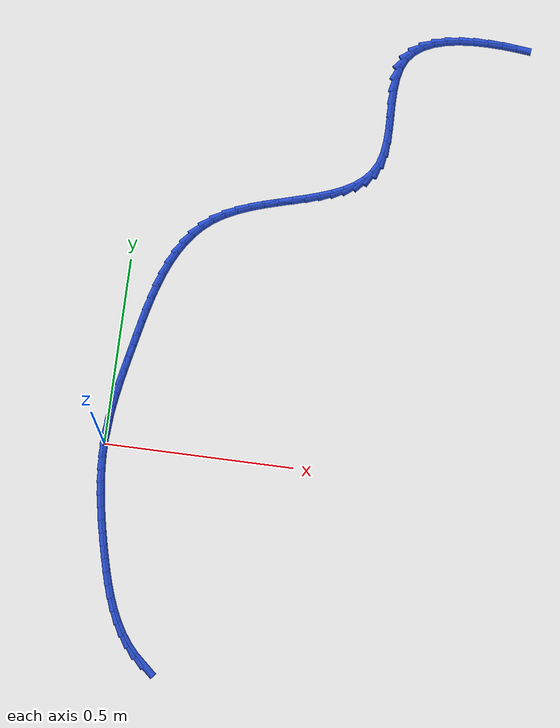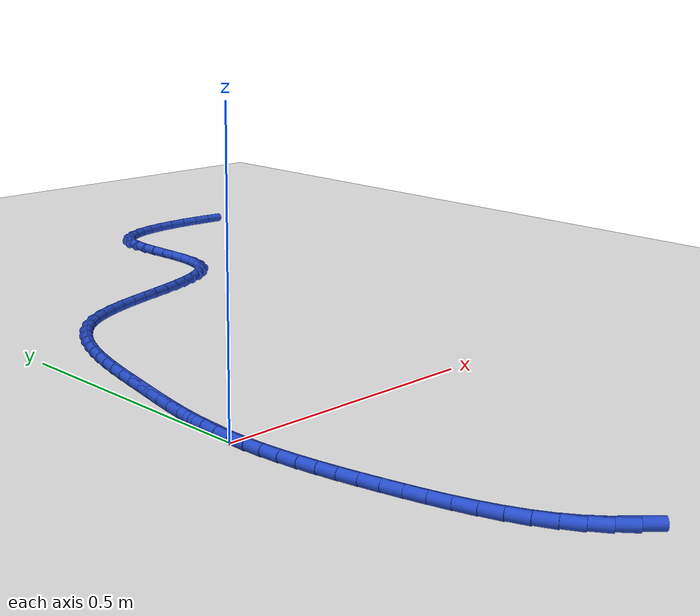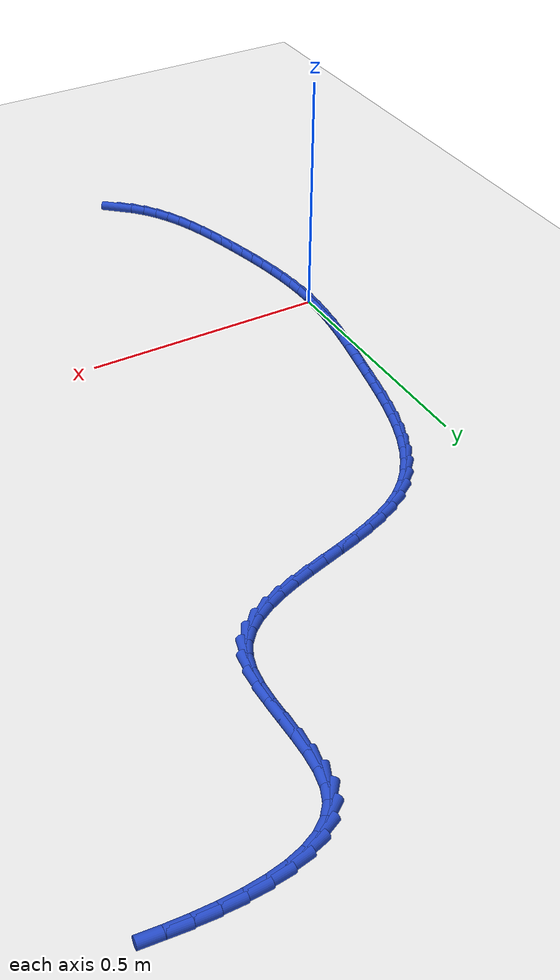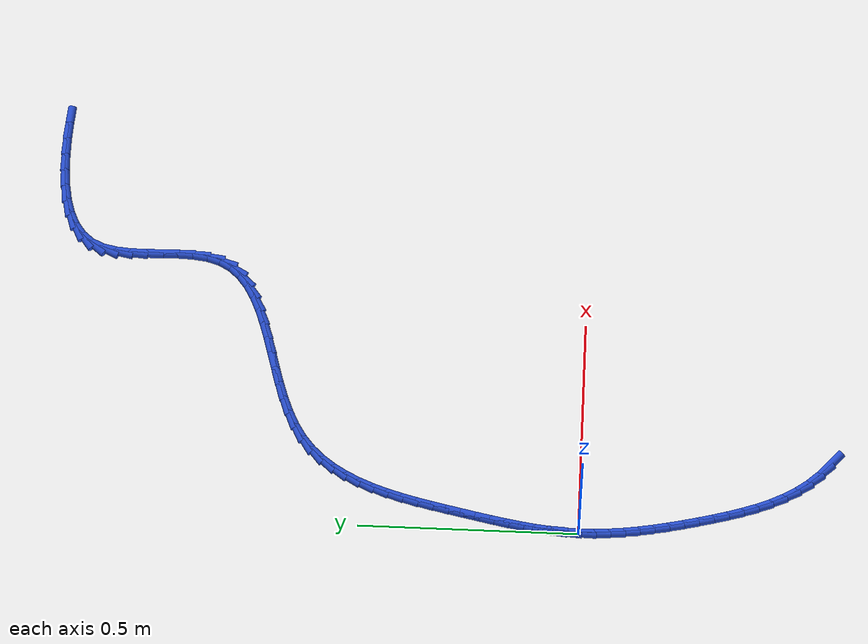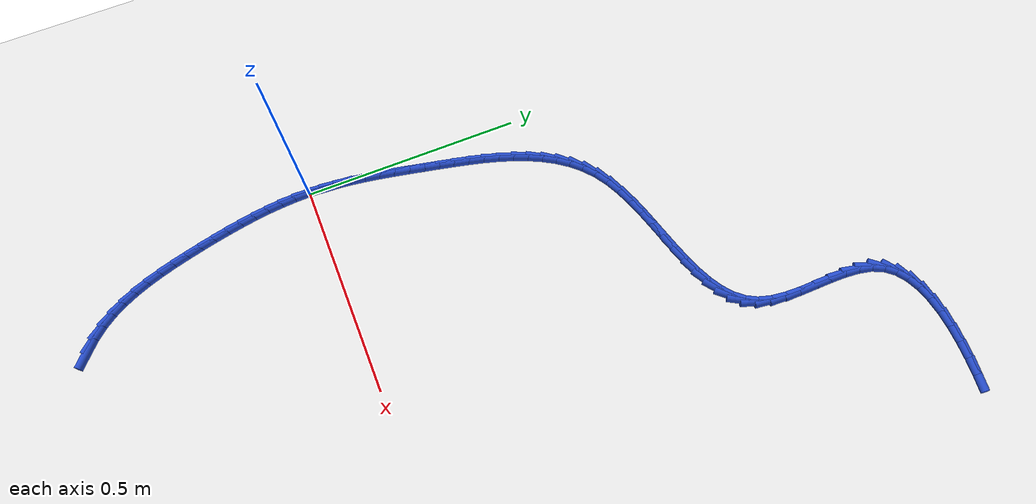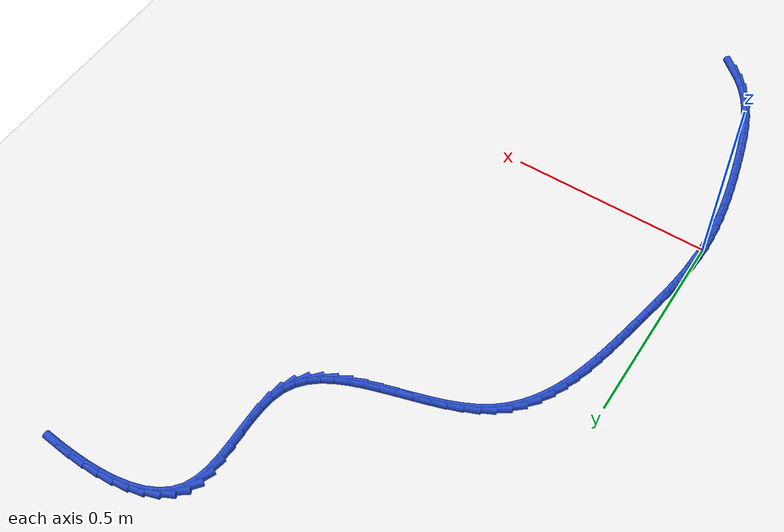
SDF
<sdf version="1.6">
 <world name="default">
  <model name="ground_plane">
   <static>1</static>
   <link name="link">
    <collision name="collision">
     <geometry><plane><normal>0 0 1</normal><size>100 100</size></plane></geometry>
     <surface><friction><ode><mu>100</mu><mu2>50</mu2></ode></friction></surface>
    </collision>
    <visual name="visual">
     <cast_shadows>0</cast_shadows>
     <geometry><plane><normal>0 0 1</normal><size>100 100</size></plane></geometry>
     <material>
      <script><uri>file://media/materials/scripts/gazebo.material</uri><name>Gazebo/WhiteGlow</name></script>
     </material>
    </visual>
   </link>
  </model>
  <model name="line">
   <link name="link_0">
    <pose>-2.6020852139652106e-18 6.938893903907228e-18 0.01 0 1.57 1.539757953169769</pose>
    <collision name="collision">
     <geometry><cylinder><radius>0.01</radius><length>0.08</length></cylinder></geometry>
    </collision>
    <visual name="visual">
     <material>
      <script><name>Gazebo/Blue</name><uri>file://media/materials/scripts/gazebo.material</uri></script>
     </material>
     <geometry><cylinder><radius>0.01</radius><length>0.08</length></cylinder></geometry>
    </visual>
   </link>
   <link name="link_1">
    <pose>0.0010129123433304473 0.032623714801807605 0.01 0 1.57 1.4978155518894152</pose>
    <collision name="collision">
     <geometry><cylinder><radius>0.01</radius><length>0.08</length></cylinder></geometry>
    </collision>
    <visual name="visual">
     <material>
      <script><name>Gazebo/Blue</name><uri>file://media/materials/scripts/gazebo.material</uri></script>
     </material>
     <geometry><cylinder><radius>0.01</radius><length>0.08</length></cylinder></geometry>
    </visual>
   </link>
   <link name="link_2">
    <pose>0.003396929024945162 0.06523206409621125 0.01 0 1.57 1.4615119541450086</pose>
    <collision name="collision">
     <geometry><cylinder><radius>0.01</radius><length>0.08</length></cylinder></geometry>
    </collision>
    <visual name="visual">
     <material>
      <script><name>Gazebo/Blue</name><uri>file://media/materials/scripts/gazebo.material</uri></script>
     </material>
     <geometry><cylinder><radius>0.01</radius><length>0.08</length></cylinder></geometry>
    </visual>
   </link>
   <link name="link_3">
    <pose>0.006980682756064616 0.09789433098796897 0.01 0 1.57 1.4310375898183822</pose>
    <collision name="collision">
     <geometry><cylinder><radius>0.01</radius><length>0.08</length></cylinder></geometry>
    </collision>
    <visual name="visual">
     <material>
      <script><name>Gazebo/Blue</name><uri>file://media/materials/scripts/gazebo.material</uri></script>
     </material>
     <geometry><cylinder><radius>0.01</radius><length>0.08</length></cylinder></geometry>
    </visual>
   </link>
   <link name="link_4">
    <pose>0.011592806247909286 0.13067979858183865 0.01 0 1.57 1.4064502367888128</pose>
    <collision name="collision">
     <geometry><cylinder><radius>0.01</radius><length>0.08</length></cylinder></geometry>
    </collision>
    <visual name="visual">
     <material>
      <script><name>Gazebo/Blue</name><uri>file://media/materials/scripts/gazebo.material</uri></script>
     </material>
     <geometry><cylinder><radius>0.01</radius><length>0.08</length></cylinder></geometry>
    </visual>
   </link>
   <link name="link_5">
    <pose>0.017061932211699642 0.16365774998257834 0.01 0 1.57 1.387707099272295</pose>
    <collision name="collision">
     <geometry><cylinder><radius>0.01</radius><length>0.08</length></cylinder></geometry>
    </collision>
    <visual name="visual">
     <material>
      <script><name>Gazebo/Blue</name><uri>file://media/materials/scripts/gazebo.material</uri></script>
     </material>
     <geometry><cylinder><radius>0.01</radius><length>0.08</length></cylinder></geometry>
    </visual>
   </link>
   <link name="link_6">
    <pose>0.023216693358656164 0.19689746829494592 0.01 0 1.57 1.3746935659658839</pose>
    <collision name="collision">
     <geometry><cylinder><radius>0.01</radius><length>0.08</length></cylinder></geometry>
    </collision>
    <visual name="visual">
     <material>
      <script><name>Gazebo/Blue</name><uri>file://media/materials/scripts/gazebo.material</uri></script>
     </material>
     <geometry><cylinder><radius>0.01</radius><length>0.08</length></cylinder></geometry>
    </visual>
   </link>
   <link name="link_7">
    <pose>0.029885722399999315 0.2304682366236993 0.01 0 1.57 1.367246253373071</pose>
    <collision name="collision">
     <geometry><cylinder><radius>0.01</radius><length>0.08</length></cylinder></geometry>
    </collision>
    <visual name="visual">
     <material>
      <script><name>Gazebo/Blue</name><uri>file://media/materials/scripts/gazebo.material</uri></script>
     </material>
     <geometry><cylinder><radius>0.01</radius><length>0.08</length></cylinder></geometry>
    </visual>
   </link>
   <link name="link_8">
    <pose>0.0368976520469496 0.26443933807359654 0.01 0 1.57 1.3648676268723923</pose>
    <collision name="collision">
     <geometry><cylinder><radius>0.01</radius><length>0.08</length></cylinder></geometry>
    </collision>
    <visual name="visual">
     <material>
      <script><name>Gazebo/Blue</name><uri>file://media/materials/scripts/gazebo.material</uri></script>
     </material>
     <geometry><cylinder><radius>0.01</radius><length>0.08</length></cylinder></geometry>
    </visual>
   </link>
   <link name="link_9">
    <pose>0.04409036057541131 0.2988723582565609 0.01 0 1.57 1.3603636788346232</pose>
    <collision name="collision">
     <geometry><cylinder><radius>0.01</radius><length>0.08</length></cylinder></geometry>
    </collision>
    <visual name="visual">
     <material>
      <script><name>Gazebo/Blue</name><uri>file://media/materials/scripts/gazebo.material</uri></script>
     </material>
     <geometry><cylinder><radius>0.01</radius><length>0.08</length></cylinder></geometry>
    </visual>
   </link>
   <link name="link_10">
    <pose>0.051518366751977525 0.3336485164486758 0.01 0 1.57 1.3466791691757087</pose>
    <collision name="collision">
     <geometry><cylinder><radius>0.01</radius><length>0.08</length></cylinder></geometry>
    </collision>
    <visual name="visual">
     <material>
      <script><name>Gazebo/Blue</name><uri>file://media/materials/scripts/gazebo.material</uri></script>
     </material>
     <geometry><cylinder><radius>0.01</radius><length>0.08</length></cylinder></geometry>
    </visual>
   </link>
   <link name="link_11">
    <pose>0.05945507138275609 0.36846679936496035 0.01 0 1.57 1.3233494310399248</pose>
    <collision name="collision">
     <geometry><cylinder><radius>0.01</radius><length>0.08</length></cylinder></geometry>
    </collision>
    <visual name="visual">
     <material>
      <script><name>Gazebo/Blue</name><uri>file://media/materials/scripts/gazebo.material</uri></script>
     </material>
     <geometry><cylinder><radius>0.01</radius><length>0.08</length></cylinder></geometry>
    </visual>
   </link>
   <link name="link_12">
    <pose>0.06818356916319533 0.4030181229701567 0.01 0 1.57 1.2898818693365801</pose>
    <collision name="collision">
     <geometry><cylinder><radius>0.01</radius><length>0.08</length></cylinder></geometry>
    </collision>
    <visual name="visual">
     <material>
      <script><name>Gazebo/Blue</name><uri>file://media/materials/scripts/gazebo.material</uri></script>
     </material>
     <geometry><cylinder><radius>0.01</radius><length>0.08</length></cylinder></geometry>
    </visual>
   </link>
   <link name="link_13">
    <pose>0.07798695478874354 0.43699340322900615 0.01 0 1.57 1.2454784135910657</pose>
    <collision name="collision">
     <geometry><cylinder><radius>0.01</radius><length>0.08</length></cylinder></geometry>
    </collision>
    <visual name="visual">
     <material>
      <script><name>Gazebo/Blue</name><uri>file://media/materials/scripts/gazebo.material</uri></script>
     </material>
     <geometry><cylinder><radius>0.01</radius><length>0.08</length></cylinder></geometry>
    </visual>
   </link>
   <link name="link_14">
    <pose>0.08914832295484894 0.4700835561062505 0.01 0 1.57 1.1890994455133583</pose>
    <collision name="collision">
     <geometry><cylinder><radius>0.01</radius><length>0.08</length></cylinder></geometry>
    </collision>
    <visual name="visual">
     <material>
      <script><name>Gazebo/Blue</name><uri>file://media/materials/scripts/gazebo.material</uri></script>
     </material>
     <geometry><cylinder><radius>0.01</radius><length>0.08</length></cylinder></geometry>
    </visual>
   </link>
   <link name="link_15">
    <pose>0.10195076835695994 0.5019794975666315 0.01 0 1.57 1.1195886480006347</pose>
    <collision name="collision">
     <geometry><cylinder><radius>0.01</radius><length>0.08</length></cylinder></geometry>
    </collision>
    <visual name="visual">
     <material>
      <script><name>Gazebo/Blue</name><uri>file://media/materials/scripts/gazebo.material</uri></script>
     </material>
     <geometry><cylinder><radius>0.01</radius><length>0.08</length></cylinder></geometry>
    </visual>
   </link>
   <link name="link_16">
    <pose>0.11667738569052477 0.5323721435748909 0.01 0 1.57 1.0359078142784317</pose>
    <collision name="collision">
     <geometry><cylinder><radius>0.01</radius><length>0.08</length></cylinder></geometry>
    </collision>
    <visual name="visual">
     <material>
      <script><name>Gazebo/Blue</name><uri>file://media/materials/scripts/gazebo.material</uri></script>
     </material>
     <geometry><cylinder><radius>0.01</radius><length>0.08</length></cylinder></geometry>
    </visual>
   </link>
   <link name="link_17">
    <pose>0.1336112696509918 0.5609524100957706 0.01 0 1.57 0.937528538577671</pose>
    <collision name="collision">
     <geometry><cylinder><radius>0.01</radius><length>0.08</length></cylinder></geometry>
    </collision>
    <visual name="visual">
     <material>
      <script><name>Gazebo/Blue</name><uri>file://media/materials/scripts/gazebo.material</uri></script>
     </material>
     <geometry><cylinder><radius>0.01</radius><length>0.08</length></cylinder></geometry>
    </visual>
   </link>
   <link name="link_18">
    <pose>0.15303551493380918 0.5874112130940118 0.01 0 1.57 0.8249776181938494</pose>
    <collision name="collision">
     <geometry><cylinder><radius>0.01</radius><length>0.08</length></cylinder></geometry>
    </collision>
    <visual name="visual">
     <material>
      <script><name>Gazebo/Blue</name><uri>file://media/materials/scripts/gazebo.material</uri></script>
     </material>
     <geometry><cylinder><radius>0.01</radius><length>0.08</length></cylinder></geometry>
    </visual>
   </link>
   <link name="link_19">
    <pose>0.1752332162344254 0.6114394685343565 0.01 0 1.57 0.7003996909303799</pose>
    <collision name="collision">
     <geometry><cylinder><radius>0.01</radius><length>0.08</length></cylinder></geometry>
    </collision>
    <visual name="visual">
     <material>
      <script><name>Gazebo/Blue</name><uri>file://media/materials/scripts/gazebo.material</uri></script>
     </material>
     <geometry><cylinder><radius>0.01</radius><length>0.08</length></cylinder></geometry>
    </visual>
   </link>
   <link name="link_20">
    <pose>0.20048746824828861 0.6327280923815465 0.01 0 1.57 0.5706910542830176</pose>
    <collision name="collision">
     <geometry><cylinder><radius>0.01</radius><length>0.08</length></cylinder></geometry>
    </collision>
    <visual name="visual">
     <material>
      <script><name>Gazebo/Blue</name><uri>file://media/materials/scripts/gazebo.material</uri></script>
     </material>
     <geometry><cylinder><radius>0.01</radius><length>0.08</length></cylinder></geometry>
    </visual>
   </link>
   <link name="link_21">
    <pose>0.22900621415514796 0.6510355288182952 0.01 0 1.57 0.46151577903712626</pose>
    <collision name="collision">
     <geometry><cylinder><radius>0.01</radius><length>0.08</length></cylinder></geometry>
    </collision>
    <visual name="visual">
     <material>
      <script><name>Gazebo/Blue</name><uri>file://media/materials/scripts/gazebo.material</uri></script>
     </material>
     <geometry><cylinder><radius>0.01</radius><length>0.08</length></cylinder></geometry>
    </visual>
   </link>
   <link name="link_22">
    <pose>0.2604058505984582 0.6666517626499088 0.01 0 1.57 0.3810138606256112</pose>
    <collision name="collision">
     <geometry><cylinder><radius>0.01</radius><length>0.08</length></cylinder></geometry>
    </collision>
    <visual name="visual">
     <material>
      <script><name>Gazebo/Blue</name><uri>file://media/materials/scripts/gazebo.material</uri></script>
     </material>
     <geometry><cylinder><radius>0.01</radius><length>0.08</length></cylinder></geometry>
    </visual>
   </link>
   <link name="link_23">
    <pose>0.29402281270156605 0.6801183411735161 0.01 0 1.57 0.3252512268479439</pose>
    <collision name="collision">
     <geometry><cylinder><radius>0.01</radius><length>0.08</length></cylinder></geometry>
    </collision>
    <visual name="visual">
     <material>
      <script><name>Gazebo/Blue</name><uri>file://media/materials/scripts/gazebo.material</uri></script>
     </material>
     <geometry><cylinder><radius>0.01</radius><length>0.08</length></cylinder></geometry>
    </visual>
   </link>
   <link name="link_24">
    <pose>0.32919186420682534 0.6919783135239546 0.01 0 1.57 0.29093875988159834</pose>
    <collision name="collision">
     <geometry><cylinder><radius>0.01</radius><length>0.08</length></cylinder></geometry>
    </collision>
    <visual name="visual">
     <material>
      <script><name>Gazebo/Blue</name><uri>file://media/materials/scripts/gazebo.material</uri></script>
     </material>
     <geometry><cylinder><radius>0.01</radius><length>0.08</length></cylinder></geometry>
    </visual>
   </link>
   <link name="link_25">
    <pose>0.3652477688565897 0.7027747288360604 0.01 0 1.57 0.2760275179680214</pose>
    <collision name="collision">
     <geometry><cylinder><radius>0.01</radius><length>0.08</length></cylinder></geometry>
    </collision>
    <visual name="visual">
     <material>
      <script><name>Gazebo/Blue</name><uri>file://media/materials/scripts/gazebo.material</uri></script>
     </material>
     <geometry><cylinder><radius>0.01</radius><length>0.08</length></cylinder></geometry>
    </visual>
   </link>
   <link name="link_26">
    <pose>0.40152529039321316 0.7130506362446701 0.01 0 1.57 0.2798519165697917</pose>
    <collision name="collision">
     <geometry><cylinder><radius>0.01</radius><length>0.08</length></cylinder></geometry>
    </collision>
    <visual name="visual">
     <material>
      <script><name>Gazebo/Blue</name><uri>file://media/materials/scripts/gazebo.material</uri></script>
     </material>
     <geometry><cylinder><radius>0.01</radius><length>0.08</length></cylinder></geometry>
    </visual>
   </link>
   <link name="link_27">
    <pose>0.4373591925590492 0.7233490848846201 0.01 0 1.57 0.3032117818992688</pose>
    <collision name="collision">
     <geometry><cylinder><radius>0.01</radius><length>0.08</length></cylinder></geometry>
    </collision>
    <visual name="visual">
     <material>
      <script><name>Gazebo/Blue</name><uri>file://media/materials/scripts/gazebo.material</uri></script>
     </material>
     <geometry><cylinder><radius>0.01</radius><length>0.08</length></cylinder></geometry>
    </visual>
   </link>
   <link name="link_28">
    <pose>0.47208423909645153 0.7342131238907471 0.01 0 1.57 0.348516696978663</pose>
    <collision name="collision">
     <geometry><cylinder><radius>0.01</radius><length>0.08</length></cylinder></geometry>
    </collision>
    <visual name="visual">
     <material>
      <script><name>Gazebo/Blue</name><uri>file://media/materials/scripts/gazebo.material</uri></script>
     </material>
     <geometry><cylinder><radius>0.01</radius><length>0.08</length></cylinder></geometry>
    </visual>
   </link>
   <link name="link_29">
    <pose>0.5050351937477742 0.7461858023978878 0.01 0 1.57 0.41996481578611994</pose>
    <collision name="collision">
     <geometry><cylinder><radius>0.01</radius><length>0.08</length></cylinder></geometry>
    </collision>
    <visual name="visual">
     <material>
      <script><name>Gazebo/Blue</name><uri>file://media/materials/scripts/gazebo.material</uri></script>
     </material>
     <geometry><cylinder><radius>0.01</radius><length>0.08</length></cylinder></geometry>
    </visual>
   </link>
   <link name="link_30">
    <pose>0.5355468202553707 0.7598101695408782 0.01 0 1.57 0.5234791876418031</pose>
    <collision name="collision">
     <geometry><cylinder><radius>0.01</radius><length>0.08</length></cylinder></geometry>
    </collision>
    <visual name="visual">
     <material>
      <script><name>Gazebo/Blue</name><uri>file://media/materials/scripts/gazebo.material</uri></script>
     </material>
     <geometry><cylinder><radius>0.01</radius><length>0.08</length></cylinder></geometry>
    </visual>
   </link>
   <link name="link_31">
    <pose>0.562953882361595 0.7756292744545554 0.01 0 1.57 0.6655704121327519</pose>
    <collision name="collision">
     <geometry><cylinder><radius>0.01</radius><length>0.08</length></cylinder></geometry>
    </collision>
    <visual name="visual">
     <material>
      <script><name>Gazebo/Blue</name><uri>file://media/materials/scripts/gazebo.material</uri></script>
     </material>
     <geometry><cylinder><radius>0.01</radius><length>0.08</length></cylinder></geometry>
    </visual>
   </link>
   <link name="link_32">
    <pose>0.5865911438088007 0.7941861662737557 0.01 0 1.57 0.849528095786038</pose>
    <collision name="collision">
     <geometry><cylinder><radius>0.01</radius><length>0.08</length></cylinder></geometry>
    </collision>
    <visual name="visual">
     <material>
      <script><name>Gazebo/Blue</name><uri>file://media/materials/scripts/gazebo.material</uri></script>
     </material>
     <geometry><cylinder><radius>0.01</radius><length>0.08</length></cylinder></geometry>
    </visual>
   </link>
   <link name="link_33">
    <pose>0.6057933683393417 0.8160238941333157 0.01 0 1.57 1.0683102863868055</pose>
    <collision name="collision">
     <geometry><cylinder><radius>0.01</radius><length>0.08</length></cylinder></geometry>
    </collision>
    <visual name="visual">
     <material>
      <script><name>Gazebo/Blue</name><uri>file://media/materials/scripts/gazebo.material</uri></script>
     </material>
     <geometry><cylinder><radius>0.01</radius><length>0.08</length></cylinder></geometry>
    </visual>
   </link>
   <link name="link_34">
    <pose>0.6198953196955717 0.8416855071680718 0.01 0 1.57 1.287420169686413</pose>
    <collision name="collision">
     <geometry><cylinder><radius>0.01</radius><length>0.08</length></cylinder></geometry>
    </collision>
    <visual name="visual">
     <material>
      <script><name>Gazebo/Blue</name><uri>file://media/materials/scripts/gazebo.material</uri></script>
     </material>
     <geometry><cylinder><radius>0.01</radius><length>0.08</length></cylinder></geometry>
    </visual>
   </link>
   <link name="link_35">
    <pose>0.6285639003954384 0.8714526339926593 0.01 0 1.57 1.4427060322493577</pose>
    <collision name="collision">
     <geometry><cylinder><radius>0.01</radius><length>0.08</length></cylinder></geometry>
    </collision>
    <visual name="visual">
     <material>
      <script><name>Gazebo/Blue</name><uri>file://media/materials/scripts/gazebo.material</uri></script>
     </material>
     <geometry><cylinder><radius>0.01</radius><length>0.08</length></cylinder></geometry>
    </visual>
   </link>
   <link name="link_36">
    <pose>0.6328250462500513 0.9045372322992693 0.01 0 1.57 1.5360852553855275</pose>
    <collision name="collision">
     <geometry><cylinder><radius>0.01</radius><length>0.08</length></cylinder></geometry>
    </collision>
    <visual name="visual">
     <material>
      <script><name>Gazebo/Blue</name><uri>file://media/materials/scripts/gazebo.material</uri></script>
     </material>
     <geometry><cylinder><radius>0.01</radius><length>0.08</length></cylinder></geometry>
    </visual>
   </link>
   <link name="link_37">
    <pose>0.6340522449286653 0.9398777078968759 0.01 0 1.57 -1.558938020085584</pose>
    <collision name="collision">
     <geometry><cylinder><radius>0.01</radius><length>0.08</length></cylinder></geometry>
    </collision>
    <visual name="visual">
     <material>
      <script><name>Gazebo/Blue</name><uri>file://media/materials/scripts/gazebo.material</uri></script>
     </material>
     <geometry><cylinder><radius>0.01</radius><length>0.08</length></cylinder></geometry>
    </visual>
   </link>
   <link name="link_38">
    <pose>0.6336189842473676 0.9764124664788819 0.01 0 1.57 -1.5511565734463788</pose>
    <collision name="collision">
     <geometry><cylinder><radius>0.01</radius><length>0.08</length></cylinder></geometry>
    </collision>
    <visual name="visual">
     <material>
      <script><name>Gazebo/Blue</name><uri>file://media/materials/scripts/gazebo.material</uri></script>
     </material>
     <geometry><cylinder><radius>0.01</radius><length>0.08</length></cylinder></geometry>
    </visual>
   </link>
   <link name="link_39">
    <pose>0.6328987520222471 1.013079913738692 0.01 0 1.57 1.5605476930738251</pose>
    <collision name="collision">
     <geometry><cylinder><radius>0.01</radius><length>0.08</length></cylinder></geometry>
    </collision>
    <visual name="visual">
     <material>
      <script><name>Gazebo/Blue</name><uri>file://media/materials/scripts/gazebo.material</uri></script>
     </material>
     <geometry><cylinder><radius>0.01</radius><length>0.08</length></cylinder></geometry>
    </visual>
   </link>
   <link name="link_40">
    <pose>0.6332650360693916 1.0488184553697102 0.01 0 1.57 1.4872445633317386</pose>
    <collision name="collision">
     <geometry><cylinder><radius>0.01</radius><length>0.08</length></cylinder></geometry>
    </collision>
    <visual name="visual">
     <material>
      <script><name>Gazebo/Blue</name><uri>file://media/materials/scripts/gazebo.material</uri></script>
     </material>
     <geometry><cylinder><radius>0.01</radius><length>0.08</length></cylinder></geometry>
    </visual>
   </link>
   <link name="link_41">
    <pose>0.6360913242048886 1.0825664970653393 0.01 0 1.57 1.3571479169844467</pose>
    <collision name="collision">
     <geometry><cylinder><radius>0.01</radius><length>0.08</length></cylinder></geometry>
    </collision>
    <visual name="visual">
     <material>
      <script><name>Gazebo/Blue</name><uri>file://media/materials/scripts/gazebo.material</uri></script>
     </material>
     <geometry><cylinder><radius>0.01</radius><length>0.08</length></cylinder></geometry>
    </visual>
   </link>
   <link name="link_42">
    <pose>0.6427511042448266 1.1132624445189838 0.01 0 1.57 1.1509646233116997</pose>
    <collision name="collision">
     <geometry><cylinder><radius>0.01</radius><length>0.08</length></cylinder></geometry>
    </collision>
    <visual name="visual">
     <material>
      <script><name>Gazebo/Blue</name><uri>file://media/materials/scripts/gazebo.material</uri></script>
     </material>
     <geometry><cylinder><radius>0.01</radius><length>0.08</length></cylinder></geometry>
    </visual>
   </link>
   <link name="link_43">
    <pose>0.6546169300186753 1.139845340123677 0.01 0 1.57 0.8822303728471826</pose>
    <collision name="collision">
     <geometry><cylinder><radius>0.01</radius><length>0.08</length></cylinder></geometry>
    </collision>
    <visual name="visual">
     <material>
      <script><name>Gazebo/Blue</name><uri>file://media/materials/scripts/gazebo.material</uri></script>
     </material>
     <geometry><cylinder><radius>0.01</radius><length>0.08</length></cylinder></geometry>
    </visual>
   </link>
   <link name="link_44">
    <pose>0.6725319146698112 1.1616151465278655 0.01 0 1.57 0.6345131346211561</pose>
    <collision name="collision">
     <geometry><cylinder><radius>0.01</radius><length>0.08</length></cylinder></geometry>
    </collision>
    <visual name="visual">
     <material>
      <script><name>Gazebo/Blue</name><uri>file://media/materials/scripts/gazebo.material</uri></script>
     </material>
     <geometry><cylinder><radius>0.01</radius><length>0.08</length></cylinder></geometry>
    </visual>
   </link>
   <link name="link_45">
    <pose>0.6959265817796008 1.1788347901243885 0.01 0 1.57 0.43636633583716566</pose>
    <collision name="collision">
     <geometry><cylinder><radius>0.01</radius><length>0.08</length></cylinder></geometry>
    </collision>
    <visual name="visual">
     <material>
      <script><name>Gazebo/Blue</name><uri>file://media/materials/scripts/gazebo.material</uri></script>
     </material>
     <geometry><cylinder><radius>0.01</radius><length>0.08</length></cylinder></geometry>
    </visual>
   </link>
   <link name="link_46">
    <pose>0.7239984125193261 1.1919260625545993 0.01 0 1.57 0.2857250114022844</pose>
    <collision name="collision">
     <geometry><cylinder><radius>0.01</radius><length>0.08</length></cylinder></geometry>
    </collision>
    <visual name="visual">
     <material>
      <script><name>Gazebo/Blue</name><uri>file://media/materials/scripts/gazebo.material</uri></script>
     </material>
     <geometry><cylinder><radius>0.01</radius><length>0.08</length></cylinder></geometry>
    </visual>
   </link>
   <link name="link_47">
    <pose>0.7559448880602689 1.2013107554598517 0.01 0 1.57 0.17246003848919886</pose>
    <collision name="collision">
     <geometry><cylinder><radius>0.01</radius><length>0.08</length></cylinder></geometry>
    </collision>
    <visual name="visual">
     <material>
      <script><name>Gazebo/Blue</name><uri>file://media/materials/scripts/gazebo.material</uri></script>
     </material>
     <geometry><cylinder><radius>0.01</radius><length>0.08</length></cylinder></geometry>
    </visual>
   </link>
   <link name="link_48">
    <pose>0.7909634895737117 1.207410660481499 0.01 0 1.57 0.08659076894878517</pose>
    <collision name="collision">
     <geometry><cylinder><radius>0.01</radius><length>0.08</length></cylinder></geometry>
    </collision>
    <visual name="visual">
     <material>
      <script><name>Gazebo/Blue</name><uri>file://media/materials/scripts/gazebo.material</uri></script>
     </material>
     <geometry><cylinder><radius>0.01</radius><length>0.08</length></cylinder></geometry>
    </visual>
   </link>
   <link name="link_49">
    <pose>0.8282516982309359 1.210647569260895 0.01 0 1.57 0.02052861057125366</pose>
    <collision name="collision">
     <geometry><cylinder><radius>0.01</radius><length>0.08</length></cylinder></geometry>
    </collision>
    <visual name="visual">
     <material>
      <script><name>Gazebo/Blue</name><uri>file://media/materials/scripts/gazebo.material</uri></script>
     </material>
     <geometry><cylinder><radius>0.01</radius><length>0.08</length></cylinder></geometry>
    </visual>
   </link>
   <link name="link_50">
    <pose>0.8670069952032238 1.2114432734393927 0.01 0 1.57 -0.031032979979459918</pose>
    <collision name="collision">
     <geometry><cylinder><radius>0.01</radius><length>0.08</length></cylinder></geometry>
    </collision>
    <visual name="visual">
     <material>
      <script><name>Gazebo/Blue</name><uri>file://media/materials/scripts/gazebo.material</uri></script>
     </material>
     <geometry><cylinder><radius>0.01</radius><length>0.08</length></cylinder></geometry>
    </visual>
   </link>
   <link name="link_51">
    <pose>0.9064268616618569 1.2102195646583462 0.01 0 1.57 -0.0716994994099964</pose>
    <collision name="collision">
     <geometry><cylinder><radius>0.01</radius><length>0.08</length></cylinder></geometry>
    </collision>
    <visual name="visual">
     <material>
      <script><name>Gazebo/Blue</name><uri>file://media/materials/scripts/gazebo.material</uri></script>
     </material>
     <geometry><cylinder><radius>0.01</radius><length>0.08</length></cylinder></geometry>
    </visual>
   </link>
   <link name="link_52">
    <pose>0.9457087787781174 1.2073982345591083 0.01 0 1.57 -0.10387642269641931</pose>
    <collision name="collision">
     <geometry><cylinder><radius>0.01</radius><length>0.08</length></cylinder></geometry>
    </collision>
    <visual name="visual">
     <material>
      <script><name>Gazebo/Blue</name><uri>file://media/materials/scripts/gazebo.material</uri></script>
     </material>
     <geometry><cylinder><radius>0.01</radius><length>0.08</length></cylinder></geometry>
    </visual>
   </link>
   <link name="link_202">
    <pose>0.18315696459106742 -0.5624209549179352 0.01 0 1.57 -0.7289649802550042</pose>
    <collision name="collision">
     <geometry><cylinder><radius>0.01</radius><length>0.08</length></cylinder></geometry>
    </collision>
    <visual name="visual">
     <material>
      <script><name>Gazebo/Blue</name><uri>file://media/materials/scripts/gazebo.material</uri></script>
     </material>
     <geometry><cylinder><radius>0.01</radius><length>0.08</length></cylinder></geometry>
    </visual>
   </link>
   <link name="link_203">
    <pose>0.15856359174188078 -0.5404577127084808 0.01 0 1.57 -0.845645156113166</pose>
    <collision name="collision">
     <geometry><cylinder><radius>0.01</radius><length>0.08</length></cylinder></geometry>
    </collision>
    <visual name="visual">
     <material>
      <script><name>Gazebo/Blue</name><uri>file://media/materials/scripts/gazebo.material</uri></script>
     </material>
     <geometry><cylinder><radius>0.01</radius><length>0.08</length></cylinder></geometry>
    </visual>
   </link>
   <link name="link_204">
    <pose>0.1368714899425654 -0.5159806896906859 0.01 0 1.57 -0.9549273746470994</pose>
    <collision name="collision">
     <geometry><cylinder><radius>0.01</radius><length>0.08</length></cylinder></geometry>
    </collision>
    <visual name="visual">
     <material>
      <script><name>Gazebo/Blue</name><uri>file://media/materials/scripts/gazebo.material</uri></script>
     </material>
     <geometry><cylinder><radius>0.01</radius><length>0.08</length></cylinder></geometry>
    </visual>
   </link>
   <link name="link_205">
    <pose>0.11791507475082832 -0.4891943940380121 0.01 0 1.57 -1.0493969173231112</pose>
    <collision name="collision">
     <geometry><cylinder><radius>0.01</radius><length>0.08</length></cylinder></geometry>
    </collision>
    <visual name="visual">
     <material>
      <script><name>Gazebo/Blue</name><uri>file://media/materials/scripts/gazebo.material</uri></script>
     </material>
     <geometry><cylinder><radius>0.01</radius><length>0.08</length></cylinder></geometry>
    </visual>
   </link>
   <link name="link_206">
    <pose>0.10139162982850145 -0.4604290273892902 0.01 0 1.57 -1.1287861013606835</pose>
    <collision name="collision">
     <geometry><cylinder><radius>0.01</radius><length>0.08</length></cylinder></geometry>
    </collision>
    <visual name="visual">
     <material>
      <script><name>Gazebo/Blue</name><uri>file://media/materials/scripts/gazebo.material</uri></script>
     </material>
     <geometry><cylinder><radius>0.01</radius><length>0.08</length></cylinder></geometry>
    </visual>
   </link>
   <link name="link_207">
    <pose>0.08699843883741647 -0.43001479138335075 0.01 0 1.57 -1.1937586786385133</pose>
    <collision name="collision">
     <geometry><cylinder><radius>0.01</radius><length>0.08</length></cylinder></geometry>
    </collision>
    <visual name="visual">
     <material>
      <script><name>Gazebo/Blue</name><uri>file://media/materials/scripts/gazebo.material</uri></script>
     </material>
     <geometry><cylinder><radius>0.01</radius><length>0.08</length></cylinder></geometry>
    </visual>
   </link>
   <link name="link_208">
    <pose>0.074432785439406 -0.3982818876590265 0.01 0 1.57 -1.2453726343906752</pose>
    <collision name="collision">
     <geometry><cylinder><radius>0.01</radius><length>0.08</length></cylinder></geometry>
    </collision>
    <visual name="visual">
     <material>
      <script><name>Gazebo/Blue</name><uri>file://media/materials/scripts/gazebo.material</uri></script>
     </material>
     <geometry><cylinder><radius>0.01</radius><length>0.08</length></cylinder></geometry>
    </visual>
   </link>
   <link name="link_209">
    <pose>0.0633919532963017 -0.3655605178551479 0.01 0 1.57 -1.2847121355686013</pose>
    <collision name="collision">
     <geometry><cylinder><radius>0.01</radius><length>0.08</length></cylinder></geometry>
    </collision>
    <visual name="visual">
     <material>
      <script><name>Gazebo/Blue</name><uri>file://media/materials/scripts/gazebo.material</uri></script>
     </material>
     <geometry><cylinder><radius>0.01</radius><length>0.08</length></cylinder></geometry>
    </visual>
   </link>
   <link name="link_210">
    <pose>0.053573226069935496 -0.33218088361054626 0.01 0 1.57 -1.3126711597197398</pose>
    <collision name="collision">
     <geometry><cylinder><radius>0.01</radius><length>0.08</length></cylinder></geometry>
    </collision>
    <visual name="visual">
     <material>
      <script><name>Gazebo/Blue</name><uri>file://media/materials/scripts/gazebo.material</uri></script>
     </material>
     <geometry><cylinder><radius>0.01</radius><length>0.08</length></cylinder></geometry>
    </visual>
   </link>
   <link name="link_211">
    <pose>0.04467388742213937 -0.2984731865640526 0.01 0 1.57 -1.3301408834547626</pose>
    <collision name="collision">
     <geometry><cylinder><radius>0.01</radius><length>0.08</length></cylinder></geometry>
    </collision>
    <visual name="visual">
     <material>
      <script><name>Gazebo/Blue</name><uri>file://media/materials/scripts/gazebo.material</uri></script>
     </material>
     <geometry><cylinder><radius>0.01</radius><length>0.08</length></cylinder></geometry>
    </visual>
   </link>
   <link name="link_212">
    <pose>0.0364003769390536 -0.2647603811019751 0.01 0 1.57 -1.3442743113900308</pose>
    <collision name="collision">
     <geometry><cylinder><radius>0.01</radius><length>0.08</length></cylinder></geometry>
    </collision>
    <visual name="visual">
     <material>
      <script><name>Gazebo/Blue</name><uri>file://media/materials/scripts/gazebo.material</uri></script>
     </material>
     <geometry><cylinder><radius>0.01</radius><length>0.08</length></cylinder></geometry>
    </visual>
   </link>
   <link name="link_213">
    <pose>0.02866586932787404 -0.231201783120718 0.01 0 1.57 -1.3620205790986393</pose>
    <collision name="collision">
     <geometry><cylinder><radius>0.01</radius><length>0.08</length></cylinder></geometry>
    </collision>
    <visual name="visual">
     <material>
      <script><name>Gazebo/Blue</name><uri>file://media/materials/scripts/gazebo.material</uri></script>
     </material>
     <geometry><cylinder><radius>0.01</radius><length>0.08</length></cylinder></geometry>
    </visual>
   </link>
   <link name="link_214">
    <pose>0.02158815726338813 -0.19779474583200046 0.01 0 1.57 -1.3837878521098101</pose>
    <collision name="collision">
     <geometry><cylinder><radius>0.01</radius><length>0.08</length></cylinder></geometry>
    </collision>
    <visual name="visual">
     <material>
      <script><name>Gazebo/Blue</name><uri>file://media/materials/scripts/gazebo.material</uri></script>
     </material>
     <geometry><cylinder><radius>0.01</radius><length>0.08</length></cylinder></geometry>
    </visual>
   </link>
   <link name="link_215">
    <pose>0.015293765899934442 -0.16452971036719688 0.01 0 1.57 -1.4096897424338852</pose>
    <collision name="collision">
     <geometry><cylinder><radius>0.01</radius><length>0.08</length></cylinder></geometry>
    </collision>
    <visual name="visual">
     <material>
      <script><name>Gazebo/Blue</name><uri>file://media/materials/scripts/gazebo.material</uri></script>
     </material>
     <geometry><cylinder><radius>0.01</radius><length>0.08</length></cylinder></geometry>
    </visual>
   </link>
   <link name="link_216">
    <pose>0.009909220391851449 -0.13139711785768118 0.01 0 1.57 -1.4398262401594488</pose>
    <collision name="collision">
     <geometry><cylinder><radius>0.01</radius><length>0.08</length></cylinder></geometry>
    </collision>
    <visual name="visual">
     <material>
      <script><name>Gazebo/Blue</name><uri>file://media/materials/scripts/gazebo.material</uri></script>
     </material>
     <geometry><cylinder><radius>0.01</radius><length>0.08</length></cylinder></geometry>
    </visual>
   </link>
   <link name="link_217">
    <pose>0.005561045893478002 -0.09838740943482953 0.01 0 1.57 -1.474269625899705</pose>
    <collision name="collision">
     <geometry><cylinder><radius>0.01</radius><length>0.08</length></cylinder></geometry>
    </collision>
    <visual name="visual">
     <material>
      <script><name>Gazebo/Blue</name><uri>file://media/materials/scripts/gazebo.material</uri></script>
     </material>
     <geometry><cylinder><radius>0.01</radius><length>0.08</length></cylinder></geometry>
    </visual>
   </link>
   <link name="link_218">
    <pose>0.002375767559152549 -0.06549102623001586 0.01 0 1.57 -1.5130470776323965</pose>
    <collision name="collision">
     <geometry><cylinder><radius>0.01</radius><length>0.08</length></cylinder></geometry>
    </collision>
    <visual name="visual">
     <material>
      <script><name>Gazebo/Blue</name><uri>file://media/materials/scripts/gazebo.material</uri></script>
     </material>
     <geometry><cylinder><radius>0.01</radius><length>0.08</length></cylinder></geometry>
    </visual>
   </link>
   <link name="link_219">
    <pose>0.00047991054321368763 -0.032698409374614795 0.01 0 1.57 -1.556120503182935</pose>
    <collision name="collision">
     <geometry><cylinder><radius>0.01</radius><length>0.08</length></cylinder></geometry>
    </collision>
    <visual name="visual">
     <material>
      <script><name>Gazebo/Blue</name><uri>file://media/materials/scripts/gazebo.material</uri></script>
     </material>
     <geometry><cylinder><radius>0.01</radius><length>0.08</length></cylinder></geometry>
    </visual>
   </link>
   <link name="link_220">
    <pose>6.071532165918825e-18 -1.734723475976807e-16 0.01 0 1.57 1.5382277011343906</pose>
    <collision name="collision">
     <geometry><cylinder><radius>0.01</radius><length>0.08</length></cylinder></geometry>
    </collision>
    <visual name="visual">
     <material>
      <script><name>Gazebo/Blue</name><uri>file://media/materials/scripts/gazebo.material</uri></script>
     </material>
     <geometry><cylinder><radius>0.01</radius><length>0.08</length></cylinder></geometry>
    </visual>
   </link>
   <link name="link_221">
    <pose>0.0010625610838500815 0.03261376076245099 0.01 0 1.57 1.4870446523477412</pose>
    <collision name="collision">
     <geometry><cylinder><radius>0.01</radius><length>0.08</length></cylinder></geometry>
    </collision>
    <visual name="visual">
     <material>
      <script><name>Gazebo/Blue</name><uri>file://media/materials/scripts/gazebo.material</uri></script>
     </material>
     <geometry><cylinder><radius>0.01</radius><length>0.08</length></cylinder></geometry>
    </visual>
   </link>
   <link name="link_222">
    <pose>0.0037941189491026046 0.06515243178136725 0.01 0 1.57 1.512627527749732</pose>
    <collision name="collision">
     <geometry><cylinder><radius>0.01</radius><length>0.08</length></cylinder></geometry>
    </collision>
    <visual name="visual">
     <material>
      <script><name>Gazebo/Blue</name><uri>file://media/materials/scripts/gazebo.material</uri></script>
     </material>
     <geometry><cylinder><radius>0.01</radius><length>0.08</length></cylinder></geometry>
    </visual>
   </link>
  </model>
 </world>
</sdf>
